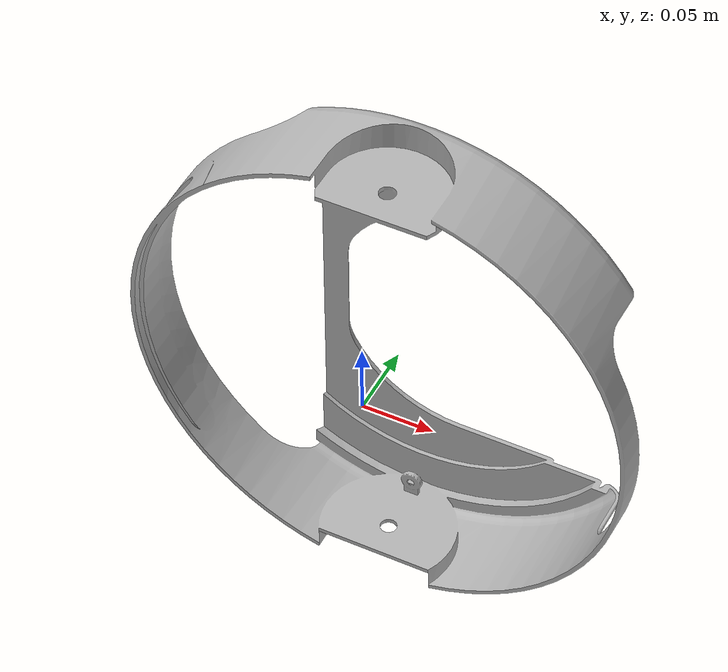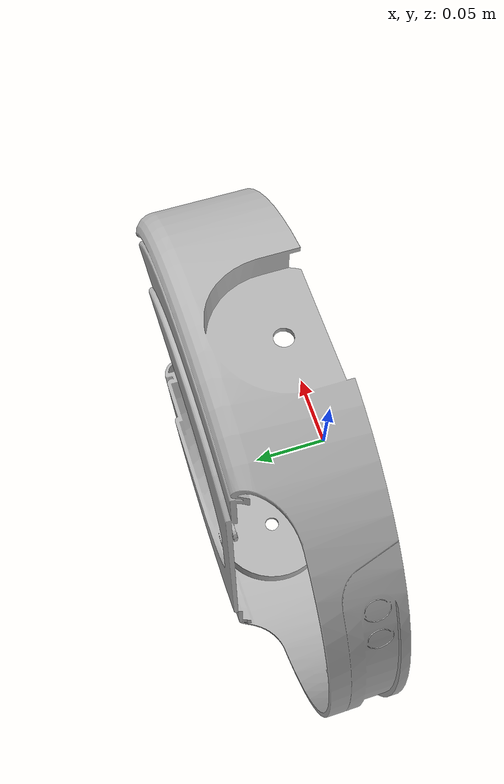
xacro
<?xml version="1.0" ?>
<robot name="RobotVacuum" xmlns:xacro="http://www.ros.org/wiki/xacro">

<xacro:include filename="$(find RobotVacuum_description)/urdf/materials.xacro" />
<xacro:include filename="$(find RobotVacuum_description)/urdf/RobotVacuum.trans" />
<xacro:include filename="$(find RobotVacuum_description)/urdf/RobotVacuum.gazebo" />
<link name="base_link">
  <inertial>
    <origin rpy="0 0 0" xyz="0.0019059908818002708 0.0608844023332045 -0.0034283510341363856"/>
    <mass value="0.36154745357135626"/>
    <inertia ixx="0.006594" ixy="-7e-05" ixz="-2e-06" iyy="0.009366" iyz="-6e-06" izz="0.00326"/>
  </inertial>
  <visual>
    <origin rpy="0 0 0" xyz="0 0 0"/>
    <geometry>
      <mesh filename="package://RobotVacuum_description/meshes/base_link.stl" scale="0.001 0.001 0.001"/>
    </geometry>
    <material name="silver"/>
  </visual>
  <collision>
    <origin rpy="0 0 0" xyz="0 0 0"/>
    <geometry>
      <mesh filename="package://RobotVacuum_description/meshes/base_link.stl" scale="0.001 0.001 0.001"/>
    </geometry>
  </collision>
</link>

</robot>

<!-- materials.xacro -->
<robot name="RobotVacuum" xmlns:xacro="http://www.ros.org/wiki/xacro" >

<material name="silver">
  <color rgba="0.700 0.700 0.700 1.000"/>
</material>

</robot>

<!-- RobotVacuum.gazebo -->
<robot name="RobotVacuum" xmlns:xacro="http://www.ros.org/wiki/xacro" >

<xacro:property name="body_color" value="Gazebo/Silver" />

<gazebo>
  <plugin filename="libgazebo_ros_control.so" name="control"/>
</gazebo>
<gazebo reference="base_link">
  <material>${body_color}</material>
  <mu1>0.2</mu1>
  <mu2>0.2</mu2>
  <selfCollide>true</selfCollide>
  <gravity>true</gravity>
</gazebo>

</robot>
